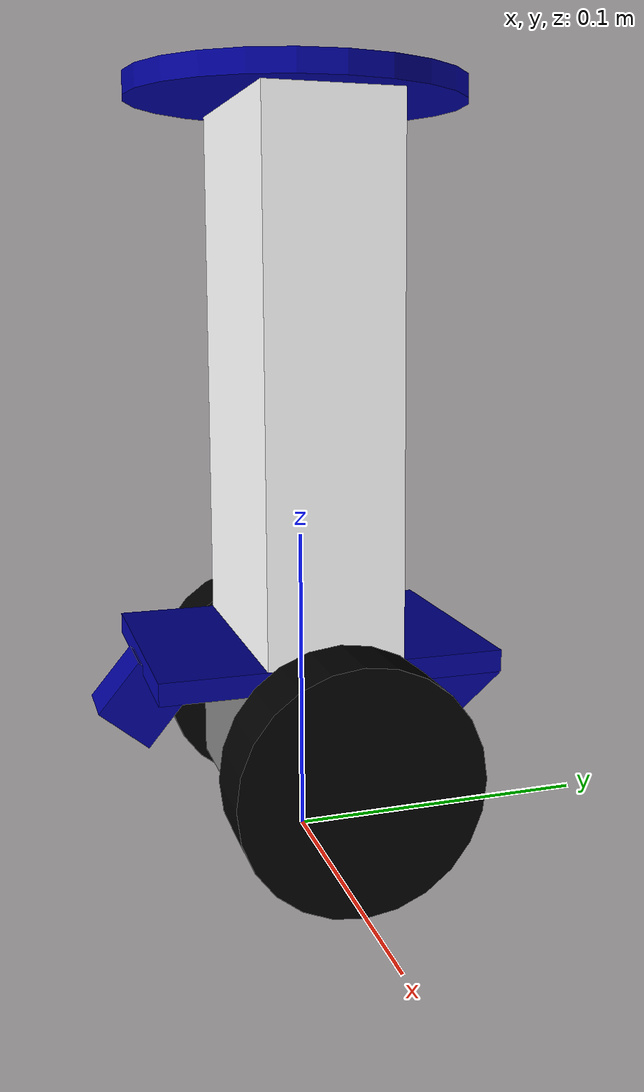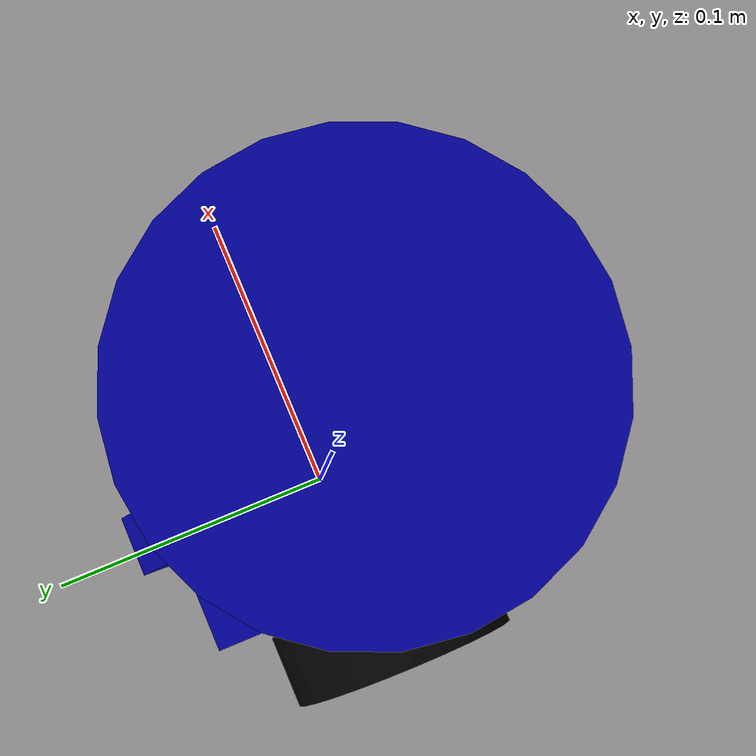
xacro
<?xml version="1.0"?> <!-- Specify this is an xml file using version 1.0-->

<!-- simplistic URDF file for a balance robot -->

<!-- INFO: in RVIZ2
    red is   x-axis
    green is y-axis
    blue is  z-axis
-->

<!-- Specify this is also an xacro extension (macro xml) -->
<robot xmlns:xacro="https://www.ros.org/wiki/xacro" name="balanceRobot">

    <!-- Material color properties -->
    <material name="gray">
        <color rgba="0.5 0.5 0.5 1.0"/>
    </material>

    <material name="red">
        <color rgba="0.6 0.0 0.0 1.0"/>
    </material>

    <material name="green">
        <color rgba="0.0 0.6 0.0 1.0"/>
    </material>

    <material name="blue">
        <color rgba="0.0 0.0 0.6 1.0"/>
    </material>

    <material name="white">
        <color rgba="1.0 1.0 1.0 1.0"/>
    </material>

    <material name="black">
        <color rgba="0.0 0.0 0.0 1.0"/>
    </material>

    <!-- Links of the robot they describe the (objects/parts) of the robot -->
    <!-- Link that is on the ground in the middle of the robot (useful for navigation purposes -->
    <link name="base_footprint"> <!-- Conventional name for this virtual reference link -->
        <!-- Empty virtual link-->
    </link>

    <!-- Base link stepper motors with housing -->
    <!-- The dimension are defined first as parameters every dimension is in meters -->
    <xacro:property name="HSB" value="0.083"/> <!-- HSB= Height Stepper Base (Height = x-axis) -->
    <xacro:property name="WSB" value="0.050"/> <!-- WSB= Width Stepper Base (Width = y-axis) -->
    <xacro:property name="LSB" value="0.046"/> <!-- LSB= Length Stepper Base (Length = z-axis) -->

    <link name="base_link"> <!-- Needs to be called base_link (as a first real link in stead of StepperBase) -->
        <visual>
            <origin xyz="0.0 0.0 0.0" rpy="0.0 0.0 0.0"/>
            <geometry>
                <box size="${HSB} ${WSB} ${LSB}"/>
            </geometry>
            <material name="gray"/>
        </visual>
    </link>

    <!-- Base Plate of the robot where everthing gets mounted this geometry is approximated as a box -->
    <!-- The dimension are defined first as parameters -->
    <xacro:property name="HBP" value="0.083"/> <!-- HBP= Height Base Plate -->
    <xacro:property name="WBP" value="0.108"/> <!-- WBP= Width Base Plate -->
    <xacro:property name="LBP" value="0.007"/> <!-- LBP= Length Base Plate -->

    <link name="basePlate_link">
        <visual>
            <origin xyz="0.0 0.0 0.0" rpy="0.0 0.0 0.0"/>
            <geometry>
                <box size="${HBP} ${WBP} ${LBP}"/>
            </geometry>
            <material name="blue"/>
        </visual>
    </link>

    <!-- Front Tip Stop of the robot (stopping the robot from tipping over to the front) -->
    <!-- The dimension are defined first as parameters -->
    <!-- We heavily simplify this stop as a box -->
    <xacro:property name="HTS" value="0.020"/> <!-- HTS= Height Tip Stop -->
    <xacro:property name="WTS" value="0.020"/> <!-- WTS= Width Tip Stop -->
    <xacro:property name="LTS" value="0.020"/> <!-- LTS= Length Tip Stop -->

    <link name="frontTipStop_link">
        <visual>
            <origin xyz="0.0 0.0 0.0" rpy="${pi*0.28} 0.0 0.0"/> <!-- turned 50 degrees on x-axis -->
            <geometry>
                <box size="${HTS} ${WTS} ${LTS}"/>
            </geometry>
            <material name="blue"/>
        </visual>
    </link>

    <!-- Back Tip Stop of the robot (stopping the robot from tipping over to the back) -->

    <link name="backTipStop_link">
        <visual>
            <origin xyz="0.0 0.0 0.0" rpy="-${pi*0.28} 0.0 0.0"/> <!-- turned 50 degrees on x-axis -->
            <geometry>
                <box size="${HTS} ${WTS} ${LTS}"/>
            </geometry>
            <material name="blue"/>
        </visual>
    </link>

    <!-- Main body link where battery pack and electronics are mounted -->
    <!-- The dimension are defined first as parameters -->
    <xacro:property name="HBL" value="0.083"/> <!-- HBL= Height Body Link -->
    <xacro:property name="WBL" value="0.043"/> <!-- WBL= Width Body Link -->
    <xacro:property name="LBL" value="0.170"/> <!-- LBL= Length Body Link -->

    <link name="body_link">
        <visual>
            <origin xyz="0.0 0.0 0.0" rpy="0.0 0.0 0.0"/>
            <geometry>
                <box size="${HBL} ${WBL} ${LBL}"/>
            </geometry>
            <material name="white"/>
        </visual>
    </link>

    <!-- Top Plate link the platform on top of the robot -->
    <!-- The dimension are defined first as parameters -->
    <xacro:property name="RTP" value="0.054"/> <!-- RPB= Radius Top Plate -->
    <xacro:property name="LTP" value="0.007"/> <!-- LPB= Length Top Plate -->

    <link name="topPlate_link">
        <visual>
            <origin xyz="0.0 0.0 0.0" rpy="0.0 0.0 0.0"/>
            <geometry>
                <cylinder radius="${RTP}" length="${LTP}"/>
            </geometry>
            <material name="blue"/>
        </visual>
    </link>

    <!-- Link that represents the right wheel-->
    <!-- The dimension are defined first as parameters -->
    <xacro:property name="RW" value="0.0375"/> <!-- RW= Radius Wheel -->
    <xacro:property name="LW" value="0.024"/> <!-- LW= Length Wheel -->

    <link name="right_wheel_link">
        <visual>
            <origin xyz="0.0 0.0 0.0" rpy="0.0 ${pi/2} 0.0"/>
            <geometry>
                <cylinder radius="${RW}" length="${LW}"/>
            </geometry>
            <material name="black"/>
        </visual>
    </link>

    <!-- Link that represents the left wheel -->
    <link name="left_wheel_link">
        <visual>
            <origin xyz="0.0 0.0 0.0" rpy="0.0 ${pi/2} 0.0"/>
            <geometry>
                <cylinder radius="${RW}" length="${LW}"/>
            </geometry>
            <material name="black"/>
        </visual>
    </link>

    <!-- Joints of the robot they attach the links together to make a TF tree -->
    <!-- Joint that connects the virtual base_footprint and base_link -->
    <!-- This link makes sure the origin is on the ground in the middle of the robot-->
    <joint name="base_footprint_joint" type="fixed">
        <origin xyz="0.0 0.0 ${RW}" rpy="0.0 0.0 0.0"/> <!-- Offset is the radius of a (right) wheel -->
        <parent link="base_footprint"/>
        <child link="base_link"/>
    </joint>

    <!-- Joint that connects base_link with baseplate -->
    <joint name="base_plate_joint" type="fixed">
        <origin xyz="0.0 0.0 ${(LSB/2) + (LBP/2)}" rpy="0.0 0.0 0.0"/> <!-- half-LSB+half-LBP (0.023+0.0035)=0.0265-->
        <parent link="base_link"/>
        <child link="basePlate_link"/>
    </joint>

    <!-- Joint that connects the frontTipStop with the baseplate -->
    <joint name="plate_ftip_joint" type="fixed">
        <origin xyz="0.0 -${(WBP/2)} -${(LTS/2) + (LBP/2)}" rpy="0.0 0.0 0.0"/>
        <parent link="basePlate_link"/>
        <child link="frontTipStop_link"/>
    </joint>

    <!-- Joint that connects the frontTipStop with the baseplate -->
    <joint name="plate_btip_joint" type="fixed">
        <origin xyz="0.0 ${(WBP/2)} -${(LTS/2) + (LBP/2)}" rpy="0.0 0.0 0.0"/>
        <parent link="basePlate_link"/>
        <child link="backTipStop_link"/>
    </joint>

    <!-- Joint that links the main body with respect to the base_link -->
    <joint name="base_body_link" type="fixed">
        <origin xyz="0.0 0.0 ${(LSB/2) + LBP + (LBL/2)}" rpy="0.0 0.0 0.0"/> <!-- half-LSB+LBP+half-LBL (0.023+0.007+0.085)=0.115 -->
        <parent link="base_link"/>
        <child link="body_link"/>
    </joint>

    <!-- Joint that links the top plate with respect to the base_link -->
    <joint name="base_topPlate_joint" type="fixed">
        <origin xyz="0.0 0.0 ${(LSB/2) + LBP + LBL + (LTP/2)}" rpy="0.0 0.0 0.0"/> <!-- Half-LSB+LBP+LBL+half-LTP (0.023+0.007+0.17+0.0035=0.2035)-->
        <parent link="base_link"/>
        <child link="topPlate_link"/>
    </joint>

    <!-- Joint that links the right wheel to the base_link as a continous rotating wheel -->
    <!-- Outside dimensions of wheels measure 137,50mm of the real robot -->
    <xacro:property name="ODW" value="0.1375"/> <!-- ODW= Outside dimension wheels-->

    <joint name="right_wheel_joint" type="continuous">
        <origin xyz="${(ODW/2)-(LW/2)} 0.0 0.0" rpy="0.0 0.0 0.0"/>
        <parent link="base_link"/>
        <child link="right_wheel_link"/>
        <axis xyz="1.0 0.0 0.0"/> <!-- continuous rotation is around the x-axis -->
    </joint>

    <!-- Joint that links the left wheel to the base_link as a continous rotating wheel -->
    <joint name="left_wheel_joint" type="continuous">
        <origin xyz="-${(ODW/2)-(LW/2)} 0.0 0.0" rpy="0.0 0.0 0.0"/>
        <parent link="base_link"/>
        <child link="left_wheel_link"/>
        <axis xyz="1.0 0.0 0.0"/> <!-- continuous rotation is around the x-axis -->
    </joint>

</robot>
